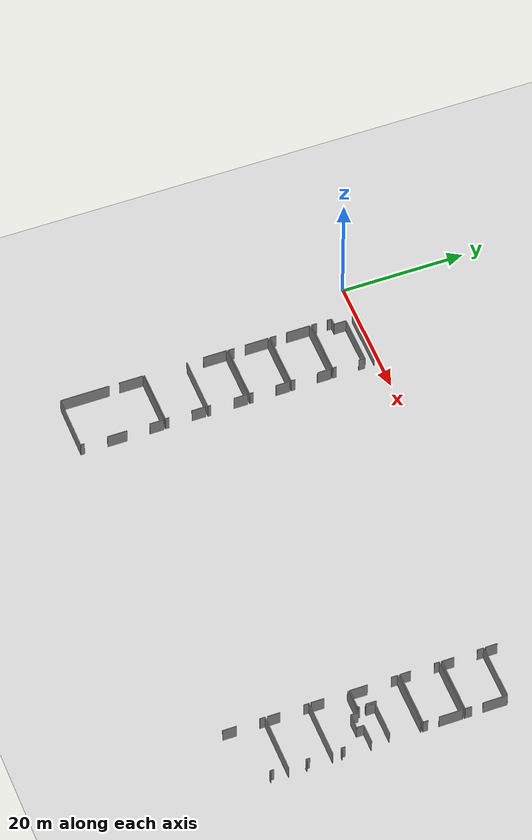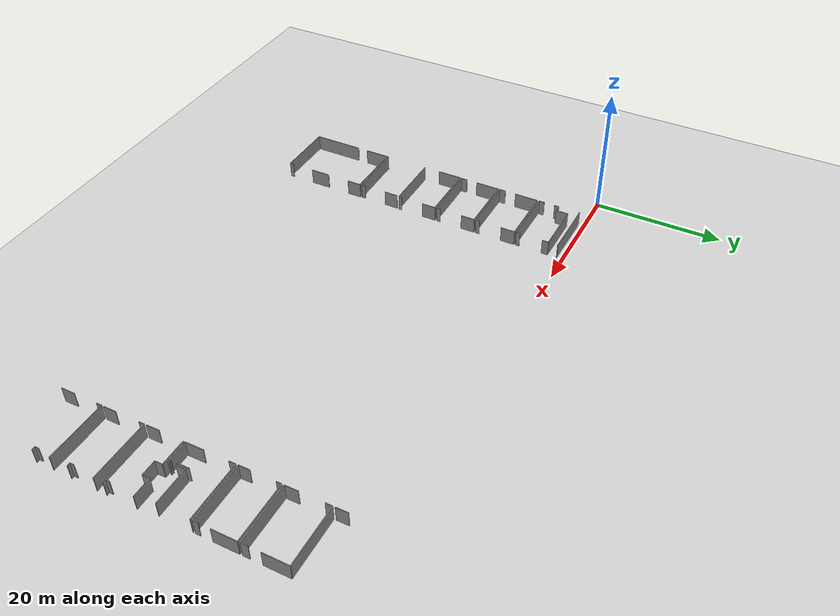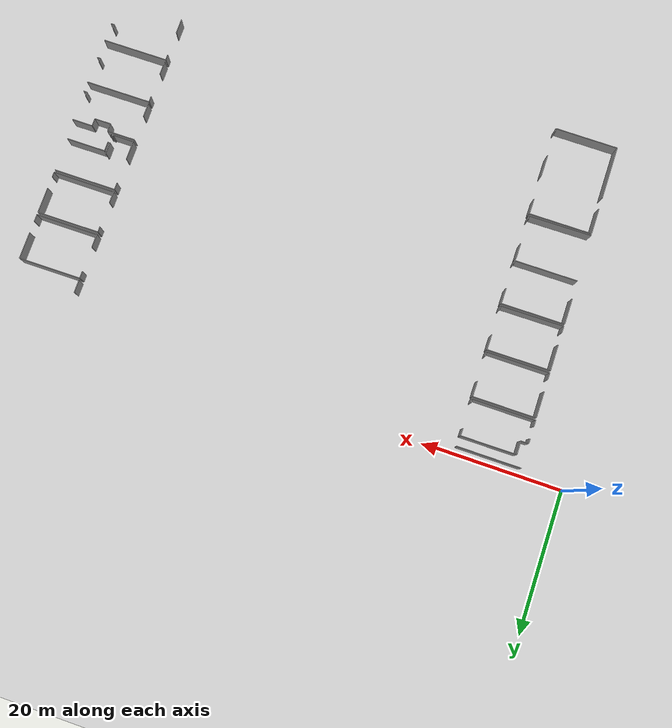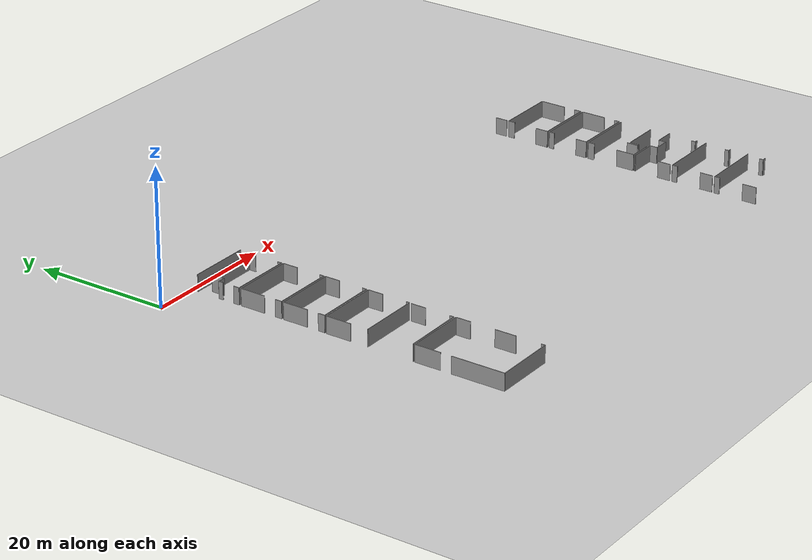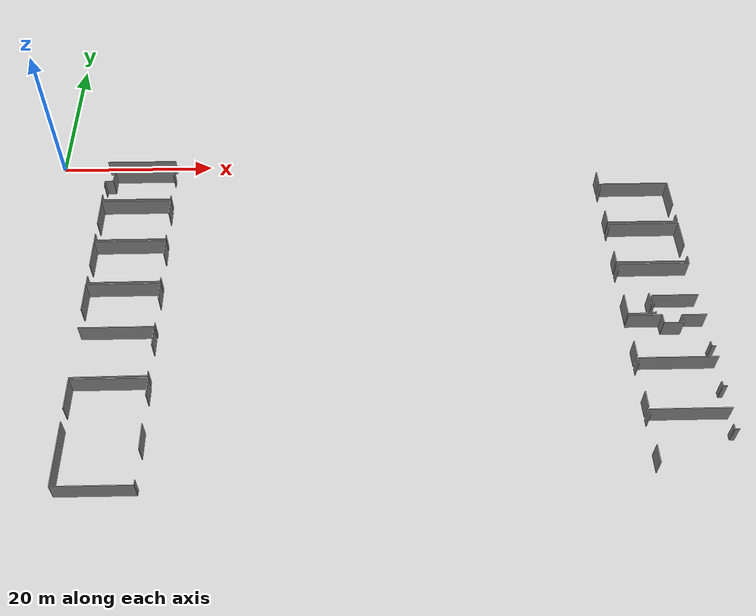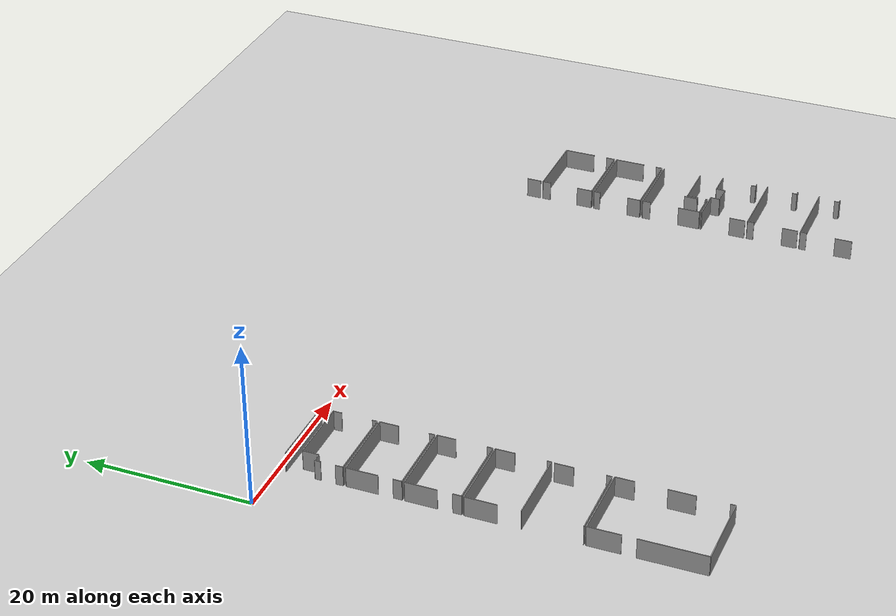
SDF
<sdf version="1.6">
 <world name="default">
  <model name="ground_plane">
   <static>1</static>
   <link name="link">
    <collision name="collision">
     <geometry><plane><normal>0 0 1</normal><size>100 100</size></plane></geometry>
     <surface><friction><ode><mu>100</mu><mu2>50</mu2></ode></friction></surface>
    </collision>
    <visual name="visual">
     <cast_shadows>0</cast_shadows>
     <geometry><plane><normal>0 0 1</normal><size>100 100</size></plane></geometry>
     <material>
      <script><uri>file://media/materials/scripts/gazebo.material</uri><name>Gazebo/Grey</name></script>
     </material>
    </visual>
   </link>
  </model>
  <model name="0510035740_A_40_1_103">
   <static>1</static>
   <link name="Wall_279">
    <collision name="Wall_279_Collision">
     <geometry><box><size>9.10952049651 0.1 2.5</size></box></geometry>
     <pose>4.55476024825 0 1.25 0 0 0</pose>
    </collision>
    <visual name="Wall_279_Visual">
     <pose>4.55476024825 0 1.25 0 0 0</pose>
     <geometry><box><size>9.10952049651 0.1 2.5</size></box></geometry>
     <material>
      <script><uri>file://media/materials/scripts/gazebo.material</uri><name>Gazebo/Grey</name></script>
      <ambient>1 1 1 1</ambient>
     </material>
    </visual>
    <pose>109.490555383 -50.632792523 0 0 0 3.13830502473</pose>
   </link>
   <link name="Wall_344">
    <collision name="Wall_344_Collision">
     <geometry><box><size>7.83817566924 0.1 2.5</size></box></geometry>
     <pose>3.91908783462 0 1.25 0 0 0</pose>
    </collision>
    <visual name="Wall_344_Visual">
     <pose>3.91908783462 0 1.25 0 0 0</pose>
     <geometry><box><size>7.83817566924 0.1 2.5</size></box></geometry>
     <material>
      <script><uri>file://media/materials/scripts/gazebo.material</uri><name>Gazebo/Grey</name></script>
      <ambient>1 1 1 1</ambient>
     </material>
    </visual>
    <pose>100.427276131 -98.2877229494 0 0 0 1.57079632679</pose>
   </link>
   <link name="Wall_345">
    <collision name="Wall_345_Collision">
     <geometry><box><size>3.83723660083 0.1 2.5</size></box></geometry>
     <pose>1.91861830041 0 1.25 0 0 0</pose>
    </collision>
    <visual name="Wall_345_Visual">
     <pose>1.91861830041 0 1.25 0 0 0</pose>
     <geometry><box><size>3.83723660083 0.1 2.5</size></box></geometry>
     <material>
      <script><uri>file://media/materials/scripts/gazebo.material</uri><name>Gazebo/Grey</name></script>
      <ambient>1 1 1 1</ambient>
     </material>
    </visual>
    <pose>100.427276131 -88.8046547337 0 0 0 1.57079632679</pose>
   </link>
   <link name="Wall_346">
    <collision name="Wall_346_Collision">
     <geometry><box><size>9.06962430918 0.1 2.5</size></box></geometry>
     <pose>4.53481215459 0 1.25 0 0 0</pose>
    </collision>
    <visual name="Wall_346_Visual">
     <pose>4.53481215459 0 1.25 0 0 0</pose>
     <geometry><box><size>9.06962430918 0.1 2.5</size></box></geometry>
     <material>
      <script><uri>file://media/materials/scripts/gazebo.material</uri><name>Gazebo/Grey</name></script>
      <ambient>1 1 1 1</ambient>
     </material>
    </visual>
    <pose>100.427276131 -84.9674181329 0 0 0 0.0</pose>
   </link>
   <link name="Wall_347">
    <collision name="Wall_347_Collision">
     <geometry><box><size>2.25198758907 0.1 2.5</size></box></geometry>
     <pose>1.12599379453 0 1.25 0 0 0</pose>
    </collision>
    <visual name="Wall_347_Visual">
     <pose>1.12599379453 0 1.25 0 0 0</pose>
     <geometry><box><size>2.25198758907 0.1 2.5</size></box></geometry>
     <material>
      <script><uri>file://media/materials/scripts/gazebo.material</uri><name>Gazebo/Grey</name></script>
      <ambient>1 1 1 1</ambient>
     </material>
    </visual>
    <pose>109.49690044 -84.9674181329 0 0 0 -1.57079632679</pose>
   </link>
   <link name="Wall_348">
    <collision name="Wall_348_Collision">
     <geometry><box><size>3.15222425969 0.1 2.5</size></box></geometry>
     <pose>1.57611212985 0 1.25 0 0 0</pose>
    </collision>
    <visual name="Wall_348_Visual">
     <pose>1.57611212985 0 1.25 0 0 0</pose>
     <geometry><box><size>3.15222425969 0.1 2.5</size></box></geometry>
     <material>
      <script><uri>file://media/materials/scripts/gazebo.material</uri><name>Gazebo/Grey</name></script>
      <ambient>1 1 1 1</ambient>
     </material>
    </visual>
    <pose>109.49690044 -90.8782193232 0 0 0 -1.57079632679</pose>
   </link>
   <link name="Wall_349">
    <collision name="Wall_349_Collision">
     <geometry><box><size>0.595927742492 0.1 2.5</size></box></geometry>
     <pose>0.297963871246 0 1.25 0 0 0</pose>
    </collision>
    <visual name="Wall_349_Visual">
     <pose>0.297963871246 0 1.25 0 0 0</pose>
     <geometry><box><size>0.595927742492 0.1 2.5</size></box></geometry>
     <material>
      <script><uri>file://media/materials/scripts/gazebo.material</uri><name>Gazebo/Grey</name></script>
      <ambient>1 1 1 1</ambient>
     </material>
    </visual>
    <pose>109.49690044 -97.7159064231 0 0 0 -1.57079632679</pose>
   </link>
   <link name="Wall_350">
    <collision name="Wall_350_Collision">
     <geometry><box><size>9.06965635845 0.1 2.5</size></box></geometry>
     <pose>4.53482817923 0 1.25 0 0 0</pose>
    </collision>
    <visual name="Wall_350_Visual">
     <pose>4.53482817923 0 1.25 0 0 0</pose>
     <geometry><box><size>9.06965635845 0.1 2.5</size></box></geometry>
     <material>
      <script><uri>file://media/materials/scripts/gazebo.material</uri><name>Gazebo/Grey</name></script>
      <ambient>1 1 1 1</ambient>
     </material>
    </visual>
    <pose>109.49690044 -98.3118341656 0 0 0 3.13893420176</pose>
   </link>
   <link name="Wall_354">
    <collision name="Wall_354_Collision">
     <geometry><box><size>2.22026230465 0.1 2.5</size></box></geometry>
     <pose>1.11013115233 0 1.25 0 0 0</pose>
    </collision>
    <visual name="Wall_354_Visual">
     <pose>1.11013115233 0 1.25 0 0 0</pose>
     <geometry><box><size>2.22026230465 0.1 2.5</size></box></geometry>
     <material>
      <script><uri>file://media/materials/scripts/gazebo.material</uri><name>Gazebo/Grey</name></script>
      <ambient>1 1 1 1</ambient>
     </material>
    </visual>
    <pose>109.424312989 -78.1751616403 0 0 0 -1.57079632679</pose>
   </link>
   <link name="Wall_355">
    <collision name="Wall_355_Collision">
     <geometry><box><size>0.594912533391 0.1 2.5</size></box></geometry>
     <pose>0.297456266695 0 1.25 0 0 0</pose>
    </collision>
    <visual name="Wall_355_Visual">
     <pose>0.297456266695 0 1.25 0 0 0</pose>
     <geometry><box><size>0.594912533391 0.1 2.5</size></box></geometry>
     <material>
      <script><uri>file://media/materials/scripts/gazebo.material</uri><name>Gazebo/Grey</name></script>
      <ambient>1 1 1 1</ambient>
     </material>
    </visual>
    <pose>109.424312989 -84.0666738577 0 0 0 -1.57079632679</pose>
   </link>
   <link name="Wall_356">
    <collision name="Wall_356_Collision">
     <geometry><box><size>9.0405146628 0.1 2.5</size></box></geometry>
     <pose>4.5202573314 0 1.25 0 0 0</pose>
    </collision>
    <visual name="Wall_356_Visual">
     <pose>4.5202573314 0 1.25 0 0 0</pose>
     <geometry><box><size>9.0405146628 0.1 2.5</size></box></geometry>
     <material>
      <script><uri>file://media/materials/scripts/gazebo.material</uri><name>Gazebo/Grey</name></script>
      <ambient>1 1 1 1</ambient>
     </material>
    </visual>
    <pose>109.424312989 -84.6615863911 0 0 0 -3.13303001719</pose>
   </link>
   <link name="Wall_358">
    <collision name="Wall_358_Collision">
     <geometry><box><size>3.78165390253 0.1 2.5</size></box></geometry>
     <pose>1.89082695126 0 1.25 0 0 0</pose>
    </collision>
    <visual name="Wall_358_Visual">
     <pose>1.89082695126 0 1.25 0 0 0</pose>
     <geometry><box><size>3.78165390253 0.1 2.5</size></box></geometry>
     <material>
      <script><uri>file://media/materials/scripts/gazebo.material</uri><name>Gazebo/Grey</name></script>
      <ambient>1 1 1 1</ambient>
     </material>
    </visual>
    <pose>100.390982405 -75.1452700773 0 0 0 1.57079632679</pose>
   </link>
   <link name="Wall_359">
    <collision name="Wall_359_Collision">
     <geometry><box><size>9.10591803456 0.1 2.5</size></box></geometry>
     <pose>4.55295901728 0 1.25 0 0 0</pose>
    </collision>
    <visual name="Wall_359_Visual">
     <pose>4.55295901728 0 1.25 0 0 0</pose>
     <geometry><box><size>9.10591803456 0.1 2.5</size></box></geometry>
     <material>
      <script><uri>file://media/materials/scripts/gazebo.material</uri><name>Gazebo/Grey</name></script>
      <ambient>1 1 1 1</ambient>
     </material>
    </visual>
    <pose>100.390982405 -71.3636161748 0 0 0 0.0</pose>
   </link>
   <link name="Wall_360">
    <collision name="Wall_360_Collision">
     <geometry><box><size>2.26848473697 0.1 2.5</size></box></geometry>
     <pose>1.13424236848 0 1.25 0 0 0</pose>
    </collision>
    <visual name="Wall_360_Visual">
     <pose>1.13424236848 0 1.25 0 0 0</pose>
     <geometry><box><size>2.26848473697 0.1 2.5</size></box></geometry>
     <material>
      <script><uri>file://media/materials/scripts/gazebo.material</uri><name>Gazebo/Grey</name></script>
      <ambient>1 1 1 1</ambient>
     </material>
    </visual>
    <pose>109.49690044 -71.3636161748 0 0 0 -1.57079632679</pose>
   </link>
   <link name="Wall_361">
    <collision name="Wall_361_Collision">
     <geometry><box><size>0.498975273313 0.1 2.5</size></box></geometry>
     <pose>0.249487636657 0 1.25 0 0 0</pose>
    </collision>
    <visual name="Wall_361_Visual">
     <pose>0.249487636657 0 1.25 0 0 0</pose>
     <geometry><box><size>0.498975273313 0.1 2.5</size></box></geometry>
     <material>
      <script><uri>file://media/materials/scripts/gazebo.material</uri><name>Gazebo/Grey</name></script>
      <ambient>1 1 1 1</ambient>
     </material>
    </visual>
    <pose>109.49690044 -77.3168023451 0 0 0 -1.57079632679</pose>
   </link>
   <link name="Wall_362">
    <collision name="Wall_362_Collision">
     <geometry><box><size>9.10591894003 0.1 2.5</size></box></geometry>
     <pose>4.55295947002 0 1.25 0 0 0</pose>
    </collision>
    <visual name="Wall_362_Visual">
     <pose>4.55295947002 0 1.25 0 0 0</pose>
     <geometry><box><size>9.10591894003 0.1 2.5</size></box></geometry>
     <material>
      <script><uri>file://media/materials/scripts/gazebo.material</uri><name>Gazebo/Grey</name></script>
      <ambient>1 1 1 1</ambient>
     </material>
    </visual>
    <pose>109.49690044 -77.8157776184 0 0 0 3.14114669788</pose>
   </link>
   <link name="Wall_363">
    <collision name="Wall_363_Collision">
     <geometry><box><size>1.01800092638 0.1 2.5</size></box></geometry>
     <pose>0.509000463189 0 1.25 0 0 0</pose>
    </collision>
    <visual name="Wall_363_Visual">
     <pose>0.509000463189 0 1.25 0 0 0</pose>
     <geometry><box><size>1.01800092638 0.1 2.5</size></box></geometry>
     <material>
      <script><uri>file://media/materials/scripts/gazebo.material</uri><name>Gazebo/Grey</name></script>
      <ambient>1 1 1 1</ambient>
     </material>
    </visual>
    <pose>100.424484306 -71.0864640902 0 0 0 1.57079632679</pose>
   </link>
   <link name="Wall_364">
    <collision name="Wall_364_Collision">
     <geometry><box><size>3.78063869343 0.1 2.5</size></box></geometry>
     <pose>1.89031934671 0 1.25 0 0 0</pose>
    </collision>
    <visual name="Wall_364_Visual">
     <pose>1.89031934671 0 1.25 0 0 0</pose>
     <geometry><box><size>3.78063869343 0.1 2.5</size></box></geometry>
     <material>
      <script><uri>file://media/materials/scripts/gazebo.material</uri><name>Gazebo/Grey</name></script>
      <ambient>1 1 1 1</ambient>
     </material>
    </visual>
    <pose>100.424484306 -68.3355012278 0 0 0 1.57079632679</pose>
   </link>
   <link name="Wall_365">
    <collision name="Wall_365_Collision">
     <geometry><box><size>9.05794940452 0.1 2.5</size></box></geometry>
     <pose>4.52897470226 0 1.25 0 0 0</pose>
    </collision>
    <visual name="Wall_365_Visual">
     <pose>4.52897470226 0 1.25 0 0 0</pose>
     <geometry><box><size>9.05794940452 0.1 2.5</size></box></geometry>
     <material>
      <script><uri>file://media/materials/scripts/gazebo.material</uri><name>Gazebo/Grey</name></script>
      <ambient>1 1 1 1</ambient>
     </material>
    </visual>
    <pose>100.424484306 -64.5548625343 0 0 0 0.0</pose>
   </link>
   <link name="Wall_366">
    <collision name="Wall_366_Collision">
     <geometry><box><size>2.21442485232 0.1 2.5</size></box></geometry>
     <pose>1.10721242616 0 1.25 0 0 0</pose>
    </collision>
    <visual name="Wall_366_Visual">
     <pose>1.10721242616 0 1.25 0 0 0</pose>
     <geometry><box><size>2.21442485232 0.1 2.5</size></box></geometry>
     <material>
      <script><uri>file://media/materials/scripts/gazebo.material</uri><name>Gazebo/Grey</name></script>
      <ambient>1 1 1 1</ambient>
     </material>
    </visual>
    <pose>109.48243371 -64.5548625343 0 0 0 -1.57079632679</pose>
   </link>
   <link name="Wall_367">
    <collision name="Wall_367_Collision">
     <geometry><box><size>0.614455308592 0.1 2.5</size></box></geometry>
     <pose>0.307227654296 0 1.25 0 0 0</pose>
    </collision>
    <visual name="Wall_367_Visual">
     <pose>0.307227654296 0 1.25 0 0 0</pose>
     <geometry><box><size>0.614455308592 0.1 2.5</size></box></geometry>
     <material>
      <script><uri>file://media/materials/scripts/gazebo.material</uri><name>Gazebo/Grey</name></script>
      <ambient>1 1 1 1</ambient>
     </material>
    </visual>
    <pose>109.48243371 -70.4265781743 0 0 0 -1.57079632679</pose>
   </link>
   <link name="Wall_368">
    <collision name="Wall_368_Collision">
     <geometry><box><size>9.05806333356 0.1 2.5</size></box></geometry>
     <pose>4.52903166678 0 1.25 0 0 0</pose>
    </collision>
    <visual name="Wall_368_Visual">
     <pose>4.52903166678 0 1.25 0 0 0</pose>
     <geometry><box><size>9.05806333356 0.1 2.5</size></box></geometry>
     <material>
      <script><uri>file://media/materials/scripts/gazebo.material</uri><name>Gazebo/Grey</name></script>
      <ambient>1 1 1 1</ambient>
     </material>
    </visual>
    <pose>109.48243371 -71.0410334829 0 0 0 -3.13657714464</pose>
   </link>
   <link name="Wall_369">
    <collision name="Wall_369_Collision">
     <geometry><box><size>1.02866062194 0.1 2.5</size></box></geometry>
     <pose>0.514330310971 0 1.25 0 0 0</pose>
    </collision>
    <visual name="Wall_369_Visual">
     <pose>0.514330310971 0 1.25 0 0 0</pose>
     <geometry><box><size>1.02866062194 0.1 2.5</size></box></geometry>
     <material>
      <script><uri>file://media/materials/scripts/gazebo.material</uri><name>Gazebo/Grey</name></script>
      <ambient>1 1 1 1</ambient>
     </material>
    </visual>
    <pose>100.424484306 -64.2609594995 0 0 0 1.57079632679</pose>
   </link>
   <link name="Wall_370">
    <collision name="Wall_370_Collision">
     <geometry><box><size>3.77150181151 0.1 2.5</size></box></geometry>
     <pose>1.88575090576 0 1.25 0 0 0</pose>
    </collision>
    <visual name="Wall_370_Visual">
     <pose>1.88575090576 0 1.25 0 0 0</pose>
     <geometry><box><size>3.77150181151 0.1 2.5</size></box></geometry>
     <material>
      <script><uri>file://media/materials/scripts/gazebo.material</uri><name>Gazebo/Grey</name></script>
      <ambient>1 1 1 1</ambient>
     </material>
    </visual>
    <pose>100.424484306 -61.5074586144 0 0 0 1.57079632679</pose>
   </link>
   <link name="Wall_371">
    <collision name="Wall_371_Collision">
     <geometry><box><size>9.02876214285 0.1 2.5</size></box></geometry>
     <pose>4.51438107143 0 1.25 0 0 0</pose>
    </collision>
    <visual name="Wall_371_Visual">
     <pose>4.51438107143 0 1.25 0 0 0</pose>
     <geometry><box><size>9.02876214285 0.1 2.5</size></box></geometry>
     <material>
      <script><uri>file://media/materials/scripts/gazebo.material</uri><name>Gazebo/Grey</name></script>
      <ambient>1 1 1 1</ambient>
     </material>
    </visual>
    <pose>100.424484306 -57.7359568029 0 0 0 0.0</pose>
   </link>
   <link name="Wall_372">
    <collision name="Wall_372_Collision">
     <geometry><box><size>2.24208930033 0.1 2.5</size></box></geometry>
     <pose>1.12104465017 0 1.25 0 0 0</pose>
    </collision>
    <visual name="Wall_372_Visual">
     <pose>1.12104465017 0 1.25 0 0 0</pose>
     <geometry><box><size>2.24208930033 0.1 2.5</size></box></geometry>
     <material>
      <script><uri>file://media/materials/scripts/gazebo.material</uri><name>Gazebo/Grey</name></script>
      <ambient>1 1 1 1</ambient>
     </material>
    </visual>
    <pose>109.453246448 -57.7359568029 0 0 0 -1.57079632679</pose>
   </link>
   <link name="Wall_373">
    <collision name="Wall_373_Collision">
     <geometry><box><size>0.64338876798 0.1 2.5</size></box></geometry>
     <pose>0.32169438399 0 1.25 0 0 0</pose>
    </collision>
    <visual name="Wall_373_Visual">
     <pose>0.32169438399 0 1.25 0 0 0</pose>
     <geometry><box><size>0.64338876798 0.1 2.5</size></box></geometry>
     <material>
      <script><uri>file://media/materials/scripts/gazebo.material</uri><name>Gazebo/Grey</name></script>
      <ambient>1 1 1 1</ambient>
     </material>
    </visual>
    <pose>109.453246448 -63.6236619861 0 0 0 -1.57079632679</pose>
   </link>
   <link name="Wall_374">
    <collision name="Wall_374_Collision">
     <geometry><box><size>9.02876419758 0.1 2.5</size></box></geometry>
     <pose>4.51438209879 0 1.25 0 0 0</pose>
    </collision>
    <visual name="Wall_374_Visual">
     <pose>4.51438209879 0 1.25 0 0 0</pose>
     <geometry><box><size>9.02876419758 0.1 2.5</size></box></geometry>
     <material>
      <script><uri>file://media/materials/scripts/gazebo.material</uri><name>Gazebo/Grey</name></script>
      <ambient>1 1 1 1</ambient>
     </material>
    </visual>
    <pose>109.453246448 -64.2670507541 0 0 0 3.14091800367</pose>
   </link>
   <link name="Wall_375">
    <collision name="Wall_375_Collision">
     <geometry><box><size>0.895922031941 0.1 2.5</size></box></geometry>
     <pose>0.447961015971 0 1.25 0 0 0</pose>
    </collision>
    <visual name="Wall_375_Visual">
     <pose>0.447961015971 0 1.25 0 0 0</pose>
     <geometry><box><size>0.895922031941 0.1 2.5</size></box></geometry>
     <material>
      <script><uri>file://media/materials/scripts/gazebo.material</uri><name>Gazebo/Grey</name></script>
      <ambient>1 1 1 1</ambient>
     </material>
    </visual>
    <pose>100.405195333 -57.4027144153 0 0 0 1.57079632679</pose>
   </link>
   <link name="Wall_376">
    <collision name="Wall_376_Collision">
     <geometry><box><size>0.706331732264 0.1 2.5</size></box></geometry>
     <pose>0.353165866132 0 1.25 0 0 0</pose>
    </collision>
    <visual name="Wall_376_Visual">
     <pose>0.353165866132 0 1.25 0 0 0</pose>
     <geometry><box><size>0.706331732264 0.1 2.5</size></box></geometry>
     <material>
      <script><uri>file://media/materials/scripts/gazebo.material</uri><name>Gazebo/Grey</name></script>
      <ambient>1 1 1 1</ambient>
     </material>
    </visual>
    <pose>100.405195333 -54.7903275953 0 0 0 1.57079632679</pose>
   </link>
   <link name="Wall_377">
    <collision name="Wall_377_Collision">
     <geometry><box><size>1.09566442263 0.1 2.5</size></box></geometry>
     <pose>0.547832211316 0 1.25 0 0 0</pose>
    </collision>
    <visual name="Wall_377_Visual">
     <pose>0.547832211316 0 1.25 0 0 0</pose>
     <geometry><box><size>1.09566442263 0.1 2.5</size></box></geometry>
     <material>
      <script><uri>file://media/materials/scripts/gazebo.material</uri><name>Gazebo/Grey</name></script>
      <ambient>1 1 1 1</ambient>
     </material>
    </visual>
    <pose>100.405195333 -54.083995863 0 0 0 0.0</pose>
   </link>
   <link name="Wall_378">
    <collision name="Wall_378_Collision">
     <geometry><box><size>1.93828797675 0.1 2.5</size></box></geometry>
     <pose>0.969143988376 0 1.25 0 0 0</pose>
    </collision>
    <visual name="Wall_378_Visual">
     <pose>0.969143988376 0 1.25 0 0 0</pose>
     <geometry><box><size>1.93828797675 0.1 2.5</size></box></geometry>
     <material>
      <script><uri>file://media/materials/scripts/gazebo.material</uri><name>Gazebo/Grey</name></script>
      <ambient>1 1 1 1</ambient>
     </material>
    </visual>
    <pose>101.500859755 -54.083995863 0 0 0 1.57079632679</pose>
   </link>
   <link name="Wall_379">
    <collision name="Wall_379_Collision">
     <geometry><box><size>7.91837718825 0.1 2.5</size></box></geometry>
     <pose>3.95918859413 0 1.25 0 0 0</pose>
    </collision>
    <visual name="Wall_379_Visual">
     <pose>3.95918859413 0 1.25 0 0 0</pose>
     <geometry><box><size>7.91837718825 0.1 2.5</size></box></geometry>
     <material>
      <script><uri>file://media/materials/scripts/gazebo.material</uri><name>Gazebo/Grey</name></script>
      <ambient>1 1 1 1</ambient>
     </material>
    </visual>
    <pose>101.500859755 -52.1457078863 0 0 0 0.0</pose>
   </link>
   <link name="Wall_380">
    <collision name="Wall_380_Collision">
     <geometry><box><size>1.03449807428 0.1 2.5</size></box></geometry>
     <pose>0.517249037138 0 1.25 0 0 0</pose>
    </collision>
    <visual name="Wall_380_Visual">
     <pose>0.517249037138 0 1.25 0 0 0</pose>
     <geometry><box><size>1.03449807428 0.1 2.5</size></box></geometry>
     <material>
      <script><uri>file://media/materials/scripts/gazebo.material</uri><name>Gazebo/Grey</name></script>
      <ambient>1 1 1 1</ambient>
     </material>
    </visual>
    <pose>109.419236943 -52.1457078863 0 0 0 -1.57079632679</pose>
   </link>
   <link name="Wall_381">
    <collision name="Wall_381_Collision">
     <geometry><box><size>0.594912533391 0.1 2.5</size></box></geometry>
     <pose>0.297456266695 0 1.25 0 0 0</pose>
    </collision>
    <visual name="Wall_381_Visual">
     <pose>0.297456266695 0 1.25 0 0 0</pose>
     <geometry><box><size>0.594912533391 0.1 2.5</size></box></geometry>
     <material>
      <script><uri>file://media/materials/scripts/gazebo.material</uri><name>Gazebo/Grey</name></script>
      <ambient>1 1 1 1</ambient>
     </material>
    </visual>
    <pose>109.419236943 -56.8435880028 0 0 0 -1.57079632679</pose>
   </link>
   <link name="Wall_382">
    <collision name="Wall_382_Collision">
     <geometry><box><size>9.0141126468 0.1 2.5</size></box></geometry>
     <pose>4.5070563234 0 1.25 0 0 0</pose>
    </collision>
    <visual name="Wall_382_Visual">
     <pose>4.5070563234 0 1.25 0 0 0</pose>
     <geometry><box><size>9.0141126468 0.1 2.5</size></box></geometry>
     <material>
      <script><uri>file://media/materials/scripts/gazebo.material</uri><name>Gazebo/Grey</name></script>
      <ambient>1 1 1 1</ambient>
     </material>
    </visual>
    <pose>109.419236943 -57.4385005362 0 0 0 3.13762263278</pose>
   </link>
   <link name="Wall_532">
    <collision name="Wall_532_Collision">
     <geometry><box><size>1.82889919608 0.1 2.5</size></box></geometry>
     <pose>0.914449598041 0 1.25 0 0 0</pose>
    </collision>
    <visual name="Wall_532_Visual">
     <pose>0.914449598041 0 1.25 0 0 0</pose>
     <geometry><box><size>1.82889919608 0.1 2.5</size></box></geometry>
     <material>
      <script><uri>file://media/materials/scripts/gazebo.material</uri><name>Gazebo/Grey</name></script>
      <ambient>1 1 1 1</ambient>
     </material>
    </visual>
    <pose>166.032880085 -55.6730519089 0 0 0 1.57079632679</pose>
   </link>
   <link name="Wall_540">
    <collision name="Wall_540_Collision">
     <geometry><box><size>1.96849044752 0.1 2.5</size></box></geometry>
     <pose>0.984245223758 0 1.25 0 0 0</pose>
    </collision>
    <visual name="Wall_540_Visual">
     <pose>0.984245223758 0 1.25 0 0 0</pose>
     <geometry><box><size>1.96849044752 0.1 2.5</size></box></geometry>
     <material>
      <script><uri>file://media/materials/scripts/gazebo.material</uri><name>Gazebo/Grey</name></script>
      <ambient>1 1 1 1</ambient>
     </material>
    </visual>
    <pose>166.046585408 -62.6267266486 0 0 0 1.57079632679</pose>
   </link>
   <link name="Wall_541">
    <collision name="Wall_541_Collision">
     <geometry><box><size>1.03449807428 0.1 2.5</size></box></geometry>
     <pose>0.517249037138 0 1.25 0 0 0</pose>
    </collision>
    <visual name="Wall_541_Visual">
     <pose>0.517249037138 0 1.25 0 0 0</pose>
     <geometry><box><size>1.03449807428 0.1 2.5</size></box></geometry>
     <material>
      <script><uri>file://media/materials/scripts/gazebo.material</uri><name>Gazebo/Grey</name></script>
      <ambient>1 1 1 1</ambient>
     </material>
    </visual>
    <pose>166.046585408 -57.0113513068 0 0 0 1.57079632679</pose>
   </link>
   <link name="Wall_542">
    <collision name="Wall_542_Collision">
     <geometry><box><size>9.00185910167 0.1 2.5</size></box></geometry>
     <pose>4.50092955083 0 1.25 0 0 0</pose>
    </collision>
    <visual name="Wall_542_Visual">
     <pose>4.50092955083 0 1.25 0 0 0</pose>
     <geometry><box><size>9.00185910167 0.1 2.5</size></box></geometry>
     <material>
      <script><uri>file://media/materials/scripts/gazebo.material</uri><name>Gazebo/Grey</name></script>
      <ambient>1 1 1 1</ambient>
     </material>
    </visual>
    <pose>166.046585408 -55.9768532325 0 0 0 0.0</pose>
   </link>
   <link name="Wall_543">
    <collision name="Wall_543_Collision">
     <geometry><box><size>3.86794667614 0.1 2.5</size></box></geometry>
     <pose>1.93397333807 0 1.25 0 0 0</pose>
    </collision>
    <visual name="Wall_543_Visual">
     <pose>1.93397333807 0 1.25 0 0 0</pose>
     <geometry><box><size>3.86794667614 0.1 2.5</size></box></geometry>
     <material>
      <script><uri>file://media/materials/scripts/gazebo.material</uri><name>Gazebo/Grey</name></script>
      <ambient>1 1 1 1</ambient>
     </material>
    </visual>
    <pose>175.048444509 -55.9768532325 0 0 0 -1.57079632679</pose>
   </link>
   <link name="Wall_544">
    <collision name="Wall_544_Collision">
     <geometry><box><size>1.07383742695 0.1 2.5</size></box></geometry>
     <pose>0.536918713476 0 1.25 0 0 0</pose>
    </collision>
    <visual name="Wall_544_Visual">
     <pose>0.536918713476 0 1.25 0 0 0</pose>
     <geometry><box><size>1.07383742695 0.1 2.5</size></box></geometry>
     <material>
      <script><uri>file://media/materials/scripts/gazebo.material</uri><name>Gazebo/Grey</name></script>
      <ambient>1 1 1 1</ambient>
     </material>
    </visual>
    <pose>175.048444509 -61.5597418831 0 0 0 -1.57079632679</pose>
   </link>
   <link name="Wall_545">
    <collision name="Wall_545_Collision">
     <geometry><box><size>9.00186170996 0.1 2.5</size></box></geometry>
     <pose>4.50093085498 0 1.25 0 0 0</pose>
    </collision>
    <visual name="Wall_545_Visual">
     <pose>4.50093085498 0 1.25 0 0 0</pose>
     <geometry><box><size>9.00186170996 0.1 2.5</size></box></geometry>
     <material>
      <script><uri>file://media/materials/scripts/gazebo.material</uri><name>Gazebo/Grey</name></script>
      <ambient>1 1 1 1</ambient>
     </material>
    </visual>
    <pose>175.048444509 -62.63357931 0 0 0 3.14083140416</pose>
   </link>
   <link name="Wall_546">
    <collision name="Wall_546_Collision">
     <geometry><box><size>1.70352087206 0.1 2.5</size></box></geometry>
     <pose>0.851760436032 0 1.25 0 0 0</pose>
    </collision>
    <visual name="Wall_546_Visual">
     <pose>0.851760436032 0 1.25 0 0 0</pose>
     <geometry><box><size>1.70352087206 0.1 2.5</size></box></geometry>
     <material>
      <script><uri>file://media/materials/scripts/gazebo.material</uri><name>Gazebo/Grey</name></script>
      <ambient>1 1 1 1</ambient>
     </material>
    </visual>
    <pose>166.033895294 -69.2009669867 0 0 0 1.57079632679</pose>
   </link>
   <link name="Wall_547">
    <collision name="Wall_547_Collision">
     <geometry><box><size>0.794908726357 0.1 2.5</size></box></geometry>
     <pose>0.397454363178 0 1.25 0 0 0</pose>
    </collision>
    <visual name="Wall_547_Visual">
     <pose>0.397454363178 0 1.25 0 0 0</pose>
     <geometry><box><size>0.794908726357 0.1 2.5</size></box></geometry>
     <material>
      <script><uri>file://media/materials/scripts/gazebo.material</uri><name>Gazebo/Grey</name></script>
      <ambient>1 1 1 1</ambient>
     </material>
    </visual>
    <pose>166.033895294 -63.787618256 0 0 0 1.57079632679</pose>
   </link>
   <link name="Wall_548">
    <collision name="Wall_548_Collision">
     <geometry><box><size>9.02216328369 0.1 2.5</size></box></geometry>
     <pose>4.51108164185 0 1.25 0 0 0</pose>
    </collision>
    <visual name="Wall_548_Visual">
     <pose>4.51108164185 0 1.25 0 0 0</pose>
     <geometry><box><size>9.02216328369 0.1 2.5</size></box></geometry>
     <material>
      <script><uri>file://media/materials/scripts/gazebo.material</uri><name>Gazebo/Grey</name></script>
      <ambient>1 1 1 1</ambient>
     </material>
    </visual>
    <pose>166.033895294 -62.9927095296 0 0 0 0.0</pose>
   </link>
   <link name="Wall_549">
    <collision name="Wall_549_Collision">
     <geometry><box><size>3.73495428387 0.1 2.5</size></box></geometry>
     <pose>1.86747714193 0 1.25 0 0 0</pose>
    </collision>
    <visual name="Wall_549_Visual">
     <pose>1.86747714193 0 1.25 0 0 0</pose>
     <geometry><box><size>3.73495428387 0.1 2.5</size></box></geometry>
     <material>
      <script><uri>file://media/materials/scripts/gazebo.material</uri><name>Gazebo/Grey</name></script>
      <ambient>1 1 1 1</ambient>
     </material>
    </visual>
    <pose>175.056058578 -62.9927095296 0 0 0 -1.57079632679</pose>
   </link>
   <link name="Wall_550">
    <collision name="Wall_550_Collision">
     <geometry><box><size>0.783741426242 0.1 2.5</size></box></geometry>
     <pose>0.391870713121 0 1.25 0 0 0</pose>
    </collision>
    <visual name="Wall_550_Visual">
     <pose>0.391870713121 0 1.25 0 0 0</pose>
     <geometry><box><size>0.783741426242 0.1 2.5</size></box></geometry>
     <material>
      <script><uri>file://media/materials/scripts/gazebo.material</uri><name>Gazebo/Grey</name></script>
      <ambient>1 1 1 1</ambient>
     </material>
    </visual>
    <pose>175.056058578 -68.438037347 0 0 0 -1.57079632679</pose>
   </link>
   <link name="Wall_551">
    <collision name="Wall_551_Collision">
     <geometry><box><size>9.02218728735 0.1 2.5</size></box></geometry>
     <pose>4.51109364368 0 1.25 0 0 0</pose>
    </collision>
    <visual name="Wall_551_Visual">
     <pose>4.51109364368 0 1.25 0 0 0</pose>
     <geometry><box><size>9.02218728735 0.1 2.5</size></box></geometry>
     <material>
      <script><uri>file://media/materials/scripts/gazebo.material</uri><name>Gazebo/Grey</name></script>
      <ambient>1 1 1 1</ambient>
     </material>
    </visual>
    <pose>175.056058578 -69.2217787732 0 0 0 3.1392859175</pose>
   </link>
   <link name="Wall_552">
    <collision name="Wall_552_Collision">
     <geometry><box><size>2.78624137865 0.1 2.5</size></box></geometry>
     <pose>1.39312068933 0 1.25 0 0 0</pose>
    </collision>
    <visual name="Wall_552_Visual">
     <pose>1.39312068933 0 1.25 0 0 0</pose>
     <geometry><box><size>2.78624137865 0.1 2.5</size></box></geometry>
     <material>
      <script><uri>file://media/materials/scripts/gazebo.material</uri><name>Gazebo/Grey</name></script>
      <ambient>1 1 1 1</ambient>
     </material>
    </visual>
    <pose>166.047093012 -77.0868574837 0 0 0 1.57079632679</pose>
   </link>
   <link name="Wall_553">
    <collision name="Wall_553_Collision">
     <geometry><box><size>1.0157167059 0.1 2.5</size></box></geometry>
     <pose>0.50785835295 0 1.25 0 0 0</pose>
    </collision>
    <visual name="Wall_553_Visual">
     <pose>0.50785835295 0 1.25 0 0 0</pose>
     <geometry><box><size>1.0157167059 0.1 2.5</size></box></geometry>
     <material>
      <script><uri>file://media/materials/scripts/gazebo.material</uri><name>Gazebo/Grey</name></script>
      <ambient>1 1 1 1</ambient>
     </material>
    </visual>
    <pose>166.047093012 -70.5712454712 0 0 0 1.57079632679</pose>
   </link>
   <link name="Wall_554">
    <collision name="Wall_554_Collision">
     <geometry><box><size>9.02597031782 0.1 2.5</size></box></geometry>
     <pose>4.51298515891 0 1.25 0 0 0</pose>
    </collision>
    <visual name="Wall_554_Visual">
     <pose>4.51298515891 0 1.25 0 0 0</pose>
     <geometry><box><size>9.02597031782 0.1 2.5</size></box></geometry>
     <material>
      <script><uri>file://media/materials/scripts/gazebo.material</uri><name>Gazebo/Grey</name></script>
      <ambient>1 1 1 1</ambient>
     </material>
    </visual>
    <pose>166.047093012 -69.5555287653 0 0 0 0.0</pose>
   </link>
   <link name="Wall_558">
    <collision name="Wall_558_Collision">
     <geometry><box><size>1.71900281086 0.1 2.5</size></box></geometry>
     <pose>0.85950140543 0 1.25 0 0 0</pose>
    </collision>
    <visual name="Wall_558_Visual">
     <pose>0.85950140543 0 1.25 0 0 0</pose>
     <geometry><box><size>1.71900281086 0.1 2.5</size></box></geometry>
     <material>
      <script><uri>file://media/materials/scripts/gazebo.material</uri><name>Gazebo/Grey</name></script>
      <ambient>1 1 1 1</ambient>
     </material>
    </visual>
    <pose>169.128506437 -74.140213067 0 0 0 -1.57079632679</pose>
   </link>
   <link name="Wall_559">
    <collision name="Wall_559_Collision">
     <geometry><box><size>0.241365963846 0.1 2.5</size></box></geometry>
     <pose>0.120682981923 0 1.25 0 0 0</pose>
    </collision>
    <visual name="Wall_559_Visual">
     <pose>0.120682981923 0 1.25 0 0 0</pose>
     <geometry><box><size>0.241365963846 0.1 2.5</size></box></geometry>
     <material>
      <script><uri>file://media/materials/scripts/gazebo.material</uri><name>Gazebo/Grey</name></script>
      <ambient>1 1 1 1</ambient>
     </material>
    </visual>
    <pose>169.128506437 -76.8564050177 0 0 0 -1.57079632679</pose>
   </link>
   <link name="Wall_560">
    <collision name="Wall_560_Collision">
     <geometry><box><size>3.08143275108 0.1 2.5</size></box></geometry>
     <pose>1.54071637554 0 1.25 0 0 0</pose>
    </collision>
    <visual name="Wall_560_Visual">
     <pose>1.54071637554 0 1.25 0 0 0</pose>
     <geometry><box><size>3.08143275108 0.1 2.5</size></box></geometry>
     <material>
      <script><uri>file://media/materials/scripts/gazebo.material</uri><name>Gazebo/Grey</name></script>
      <ambient>1 1 1 1</ambient>
     </material>
    </visual>
    <pose>169.128506437 -77.0977709815 0 0 0 3.13805095025</pose>
   </link>
   <link name="Wall_561">
    <collision name="Wall_561_Collision">
     <geometry><box><size>0.2253764205 0.1 2.5</size></box></geometry>
     <pose>0.11268821025 0 1.25 0 0 0</pose>
    </collision>
    <visual name="Wall_561_Visual">
     <pose>0.11268821025 0 1.25 0 0 0</pose>
     <geometry><box><size>0.2253764205 0.1 2.5</size></box></geometry>
     <material>
      <script><uri>file://media/materials/scripts/gazebo.material</uri><name>Gazebo/Grey</name></script>
      <ambient>1 1 1 1</ambient>
     </material>
    </visual>
    <pose>169.440937038 -77.0873650882 0 0 0 1.57079632679</pose>
   </link>
   <link name="Wall_562">
    <collision name="Wall_562_Collision">
     <geometry><box><size>1.4068260122 0.1 2.5</size></box></geometry>
     <pose>0.703413006098 0 1.25 0 0 0</pose>
    </collision>
    <visual name="Wall_562_Visual">
     <pose>0.703413006098 0 1.25 0 0 0</pose>
     <geometry><box><size>1.4068260122 0.1 2.5</size></box></geometry>
     <material>
      <script><uri>file://media/materials/scripts/gazebo.material</uri><name>Gazebo/Grey</name></script>
      <ambient>1 1 1 1</ambient>
     </material>
    </visual>
    <pose>169.440937038 -75.8721597939 0 0 0 1.57079632679</pose>
   </link>
   <link name="Wall_563">
    <collision name="Wall_563_Collision">
     <geometry><box><size>5.64684682398 0.1 2.5</size></box></geometry>
     <pose>2.82342341199 0 1.25 0 0 0</pose>
    </collision>
    <visual name="Wall_563_Visual">
     <pose>2.82342341199 0 1.25 0 0 0</pose>
     <geometry><box><size>5.64684682398 0.1 2.5</size></box></geometry>
     <material>
      <script><uri>file://media/materials/scripts/gazebo.material</uri><name>Gazebo/Grey</name></script>
      <ambient>1 1 1 1</ambient>
     </material>
    </visual>
    <pose>169.440937038 -74.4653337817 0 0 0 0.0</pose>
   </link>
   <link name="Wall_566">
    <collision name="Wall_566_Collision">
     <geometry><box><size>2.01899710031 0.1 2.5</size></box></geometry>
     <pose>1.00949855015 0 1.25 0 0 0</pose>
    </collision>
    <visual name="Wall_566_Visual">
     <pose>1.00949855015 0 1.25 0 0 0</pose>
     <geometry><box><size>2.01899710031 0.1 2.5</size></box></geometry>
     <material>
      <script><uri>file://media/materials/scripts/gazebo.material</uri><name>Gazebo/Grey</name></script>
      <ambient>1 1 1 1</ambient>
     </material>
    </visual>
    <pose>166.008515066 -83.1065398501 0 0 0 1.57079632679</pose>
   </link>
   <link name="Wall_567">
    <collision name="Wall_567_Collision">
     <geometry><box><size>4.08799324886 0.1 2.5</size></box></geometry>
     <pose>2.04399662443 0 1.25 0 0 0</pose>
    </collision>
    <visual name="Wall_567_Visual">
     <pose>2.04399662443 0 1.25 0 0 0</pose>
     <geometry><box><size>4.08799324886 0.1 2.5</size></box></geometry>
     <material>
      <script><uri>file://media/materials/scripts/gazebo.material</uri><name>Gazebo/Grey</name></script>
      <ambient>1 1 1 1</ambient>
     </material>
    </visual>
    <pose>166.008515066 -77.3777148912 0 0 0 0.0</pose>
   </link>
   <link name="Wall_568">
    <collision name="Wall_568_Collision">
     <geometry><box><size>1.15150092321 0.1 2.5</size></box></geometry>
     <pose>0.575750461603 0 1.25 0 0 0</pose>
    </collision>
    <visual name="Wall_568_Visual">
     <pose>0.575750461603 0 1.25 0 0 0</pose>
     <geometry><box><size>1.15150092321 0.1 2.5</size></box></geometry>
     <material>
      <script><uri>file://media/materials/scripts/gazebo.material</uri><name>Gazebo/Grey</name></script>
      <ambient>1 1 1 1</ambient>
     </material>
    </visual>
    <pose>170.096508315 -77.3777148912 0 0 0 -1.57079632679</pose>
   </link>
   <link name="Wall_569">
    <collision name="Wall_569_Collision">
     <geometry><box><size>2.36975184483 0.1 2.5</size></box></geometry>
     <pose>1.18487592241 0 1.25 0 0 0</pose>
    </collision>
    <visual name="Wall_569_Visual">
     <pose>1.18487592241 0 1.25 0 0 0</pose>
     <geometry><box><size>2.36975184483 0.1 2.5</size></box></geometry>
     <material>
      <script><uri>file://media/materials/scripts/gazebo.material</uri><name>Gazebo/Grey</name></script>
      <ambient>1 1 1 1</ambient>
     </material>
    </visual>
    <pose>170.096508315 -78.5292158144 0 0 0 0.0</pose>
   </link>
   <link name="Wall_570">
    <collision name="Wall_570_Collision">
     <geometry><box><size>1.11799902286 0.1 2.5</size></box></geometry>
     <pose>0.558999511431 0 1.25 0 0 0</pose>
    </collision>
    <visual name="Wall_570_Visual">
     <pose>0.558999511431 0 1.25 0 0 0</pose>
     <geometry><box><size>1.11799902286 0.1 2.5</size></box></geometry>
     <material>
      <script><uri>file://media/materials/scripts/gazebo.material</uri><name>Gazebo/Grey</name></script>
      <ambient>1 1 1 1</ambient>
     </material>
    </visual>
    <pose>172.46626016 -78.5292158144 0 0 0 1.57079632679</pose>
   </link>
   <link name="Wall_571">
    <collision name="Wall_571_Collision">
     <geometry><box><size>3.00374992862 0.1 2.5</size></box></geometry>
     <pose>1.50187496431 0 1.25 0 0 0</pose>
    </collision>
    <visual name="Wall_571_Visual">
     <pose>1.50187496431 0 1.25 0 0 0</pose>
     <geometry><box><size>3.00374992862 0.1 2.5</size></box></geometry>
     <material>
      <script><uri>file://media/materials/scripts/gazebo.material</uri><name>Gazebo/Grey</name></script>
      <ambient>1 1 1 1</ambient>
     </material>
    </visual>
    <pose>172.46626016 -77.4112167916 0 0 0 0.0</pose>
   </link>
   <link name="Wall_575">
    <collision name="Wall_575_Collision">
     <geometry><box><size>0.600749985724 0.1 2.5</size></box></geometry>
     <pose>0.300374992862 0 1.25 0 0 0</pose>
    </collision>
    <visual name="Wall_575_Visual">
     <pose>0.300374992862 0 1.25 0 0 0</pose>
     <geometry><box><size>0.600749985724 0.1 2.5</size></box></geometry>
     <material>
      <script><uri>file://media/materials/scripts/gazebo.material</uri><name>Gazebo/Grey</name></script>
      <ambient>1 1 1 1</ambient>
     </material>
    </visual>
    <pose>175.0027601 -81.3327157478 0 0 0 -1.57079632679</pose>
   </link>
   <link name="Wall_576">
    <collision name="Wall_576_Collision">
     <geometry><box><size>0.500498086965 0.1 2.5</size></box></geometry>
     <pose>0.250249043483 0 1.25 0 0 0</pose>
    </collision>
    <visual name="Wall_576_Visual">
     <pose>0.250249043483 0 1.25 0 0 0</pose>
     <geometry><box><size>0.500498086965 0.1 2.5</size></box></geometry>
     <material>
      <script><uri>file://media/materials/scripts/gazebo.material</uri><name>Gazebo/Grey</name></script>
      <ambient>1 1 1 1</ambient>
     </material>
    </visual>
    <pose>175.0027601 -81.9334657335 0 0 0 0.0</pose>
   </link>
   <link name="Wall_579">
    <collision name="Wall_579_Collision">
     <geometry><box><size>1.96925185434 0.1 2.5</size></box></geometry>
     <pose>0.984625927171 0 1.25 0 0 0</pose>
    </collision>
    <visual name="Wall_579_Visual">
     <pose>0.984625927171 0 1.25 0 0 0</pose>
     <geometry><box><size>1.96925185434 0.1 2.5</size></box></geometry>
     <material>
      <script><uri>file://media/materials/scripts/gazebo.material</uri><name>Gazebo/Grey</name></script>
      <ambient>1 1 1 1</ambient>
     </material>
    </visual>
    <pose>166.02450461 -89.8937202972 0 0 0 1.57079632679</pose>
   </link>
   <link name="Wall_580">
    <collision name="Wall_580_Collision">
     <geometry><box><size>0.834501881309 0.1 2.5</size></box></geometry>
     <pose>0.417250940655 0 1.25 0 0 0</pose>
    </collision>
    <visual name="Wall_580_Visual">
     <pose>0.417250940655 0 1.25 0 0 0</pose>
     <geometry><box><size>0.834501881309 0.1 2.5</size></box></geometry>
     <material>
      <script><uri>file://media/materials/scripts/gazebo.material</uri><name>Gazebo/Grey</name></script>
      <ambient>1 1 1 1</ambient>
     </material>
    </visual>
    <pose>166.02450461 -84.2532185301 0 0 0 1.57079632679</pose>
   </link>
   <link name="Wall_581">
    <collision name="Wall_581_Collision">
     <geometry><box><size>9.47875357703 0.1 2.5</size></box></geometry>
     <pose>4.73937678851 0 1.25 0 0 0</pose>
    </collision>
    <visual name="Wall_581_Visual">
     <pose>4.73937678851 0 1.25 0 0 0</pose>
     <geometry><box><size>9.47875357703 0.1 2.5</size></box></geometry>
     <material>
      <script><uri>file://media/materials/scripts/gazebo.material</uri><name>Gazebo/Grey</name></script>
      <ambient>1 1 1 1</ambient>
     </material>
    </visual>
    <pose>166.02450461 -83.4187166488 0 0 0 0.0</pose>
   </link>
   <link name="Wall_585">
    <collision name="Wall_585_Collision">
     <geometry><box><size>0.615724319969 0.1 2.5</size></box></geometry>
     <pose>0.307862159984 0 1.25 0 0 0</pose>
    </collision>
    <visual name="Wall_585_Visual">
     <pose>0.307862159984 0 1.25 0 0 0</pose>
     <geometry><box><size>0.615724319969 0.1 2.5</size></box></geometry>
     <material>
      <script><uri>file://media/materials/scripts/gazebo.material</uri><name>Gazebo/Grey</name></script>
      <ambient>1 1 1 1</ambient>
     </material>
    </visual>
    <pose>175.0027601 -86.7914950858 0 0 0 -1.57079632679</pose>
   </link>
   <link name="Wall_586">
    <collision name="Wall_586_Collision">
     <geometry><box><size>0.500498086965 0.1 2.5</size></box></geometry>
     <pose>0.250249043483 0 1.25 0 0 0</pose>
    </collision>
    <visual name="Wall_586_Visual">
     <pose>0.250249043483 0 1.25 0 0 0</pose>
     <geometry><box><size>0.500498086965 0.1 2.5</size></box></geometry>
     <material>
      <script><uri>file://media/materials/scripts/gazebo.material</uri><name>Gazebo/Grey</name></script>
      <ambient>1 1 1 1</ambient>
     </material>
    </visual>
    <pose>175.0027601 -87.4072194057 0 0 0 0.0</pose>
   </link>
   <link name="Wall_589">
    <collision name="Wall_589_Collision">
     <geometry><box><size>2.14945146983 0.1 2.5</size></box></geometry>
     <pose>1.07472573492 0 1.25 0 0 0</pose>
    </collision>
    <visual name="Wall_589_Visual">
     <pose>1.07472573492 0 1.25 0 0 0</pose>
     <geometry><box><size>2.14945146983 0.1 2.5</size></box></geometry>
     <material>
      <script><uri>file://media/materials/scripts/gazebo.material</uri><name>Gazebo/Grey</name></script>
      <ambient>1 1 1 1</ambient>
     </material>
    </visual>
    <pose>165.995317348 -96.8341973186 0 0 0 1.57079632679</pose>
   </link>
   <link name="Wall_590">
    <collision name="Wall_590_Collision">
     <geometry><box><size>0.823080778919 0.1 2.5</size></box></geometry>
     <pose>0.41154038946 0 1.25 0 0 0</pose>
    </collision>
    <visual name="Wall_590_Visual">
     <pose>0.41154038946 0 1.25 0 0 0</pose>
     <geometry><box><size>0.823080778919 0.1 2.5</size></box></geometry>
     <material>
      <script><uri>file://media/materials/scripts/gazebo.material</uri><name>Gazebo/Grey</name></script>
      <ambient>1 1 1 1</ambient>
     </material>
    </visual>
    <pose>165.995317348 -91.066033007 0 0 0 1.57079632679</pose>
   </link>
   <link name="Wall_591">
    <collision name="Wall_591_Collision">
     <geometry><box><size>9.49195129534 0.1 2.5</size></box></geometry>
     <pose>4.74597564767 0 1.25 0 0 0</pose>
    </collision>
    <visual name="Wall_591_Visual">
     <pose>4.74597564767 0 1.25 0 0 0</pose>
     <geometry><box><size>9.49195129534 0.1 2.5</size></box></geometry>
     <material>
      <script><uri>file://media/materials/scripts/gazebo.material</uri><name>Gazebo/Grey</name></script>
      <ambient>1 1 1 1</ambient>
     </material>
    </visual>
    <pose>165.995317348 -90.2429522281 0 0 0 0.0</pose>
   </link>
   <link name="Wall_594">
    <collision name="Wall_594_Collision">
     <geometry><box><size>0.614455308592 0.1 2.5</size></box></geometry>
     <pose>0.307227654296 0 1.25 0 0 0</pose>
    </collision>
    <visual name="Wall_594_Visual">
     <pose>0.307227654296 0 1.25 0 0 0</pose>
     <geometry><box><size>0.614455308592 0.1 2.5</size></box></geometry>
     <material>
      <script><uri>file://media/materials/scripts/gazebo.material</uri><name>Gazebo/Grey</name></script>
      <ambient>1 1 1 1</ambient>
     </material>
    </visual>
    <pose>174.982455918 -92.3497649156 0 0 0 -1.57079632679</pose>
   </link>
   <link name="Wall_595">
    <collision name="Wall_595_Collision">
     <geometry><box><size>0.5268935236 0.1 2.5</size></box></geometry>
     <pose>0.2634467618 0 1.25 0 0 0</pose>
    </collision>
    <visual name="Wall_595_Visual">
     <pose>0.2634467618 0 1.25 0 0 0</pose>
     <geometry><box><size>0.5268935236 0.1 2.5</size></box></geometry>
     <material>
      <script><uri>file://media/materials/scripts/gazebo.material</uri><name>Gazebo/Grey</name></script>
      <ambient>1 1 1 1</ambient>
     </material>
    </visual>
    <pose>174.982455918 -92.9642202242 0 0 0 0.0</pose>
   </link>
   <pose>-93.95 49.6557238758 0 0 0 0</pose>
  </model>
 </world>
</sdf>
